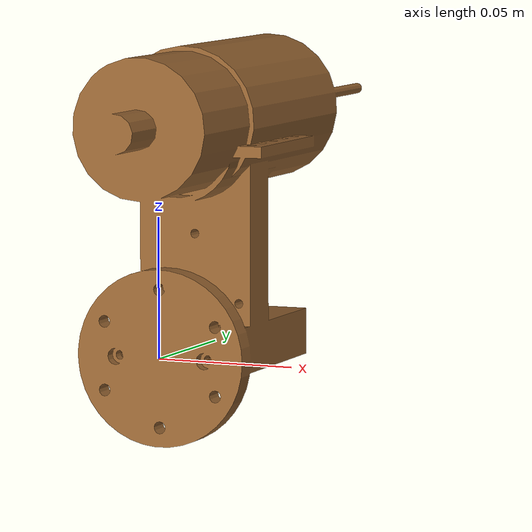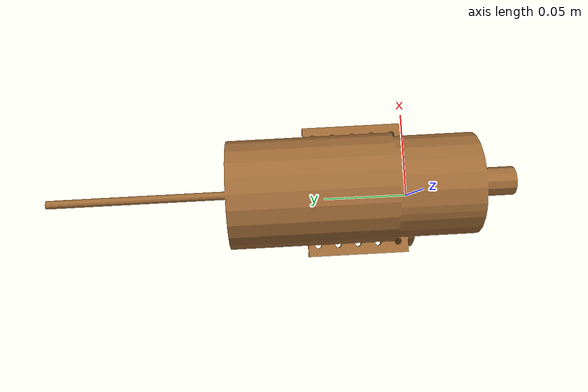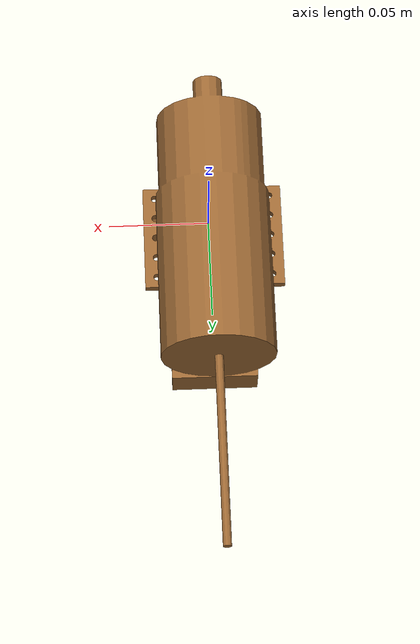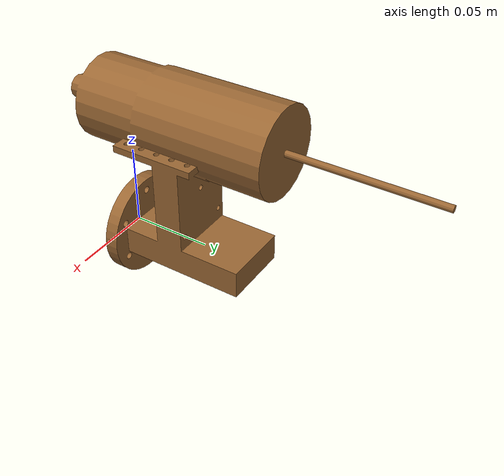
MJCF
<?xml version="1.0" encoding="UTF-8"?>
<mujoco>
    <asset>
        <mesh file="luosidao.STL" name="luosidao_mesh" scale="0.001 0.001 0.001"/>
    </asset>

    <worldbody>
        <body name="luosidao_main_body" pos="0 0 0">
            <geom type="mesh" mesh="luosidao_mesh" rgba="0.6 0.4 0.2 1"/>
        </body>
    </worldbody>
</mujoco>
